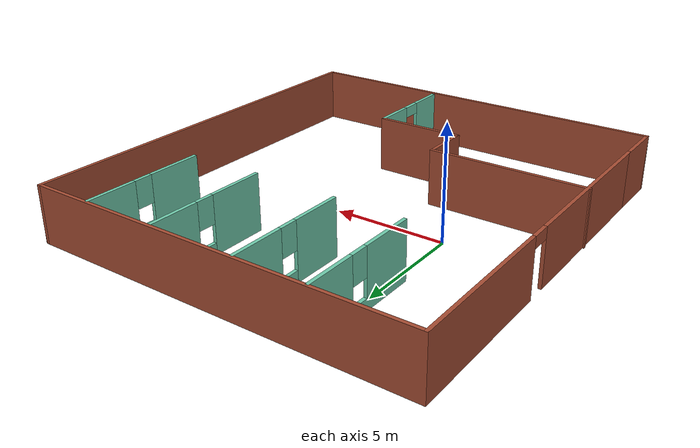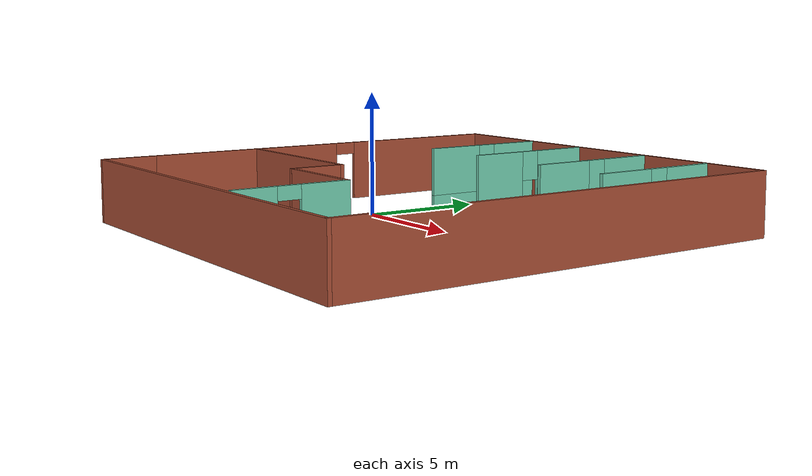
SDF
<?xml version='1.0'?>
<sdf version='1.6'>
  <model name='model'>
    <pose frame=''>3.98006 -0.405182 0 0 -0 0</pose>
    <link name='Wall_1'>
      <pose frame=''>-8.52339 1.125 0 0 -0 1.5708</pose>
      <visual name='Wall_1_Visual_0'>
        <pose frame=''>-3.9165 0 1.25 0 -0 0</pose>
        <geometry>
          <box>
            <size>8.41701 0.15 2.5</size>
          </box>
        </geometry>
        <material>
          <script>
            <uri>file://media/materials/scripts/gazebo.material</uri>
            <name>Gazebo/Bricks</name>
          </script>
          <ambient>1 1 1 1</ambient>
        </material>
      </visual>
      <collision name='Wall_1_Collision_0'>
        <geometry>
          <box>
            <size>8.41701 0.15 2.5</size>
          </box>
        </geometry>
        <pose frame=''>-3.9165 0 1.25 0 -0 0</pose>
      </collision>
      <visual name='Wall_1_Visual_1'>
        <pose frame=''>4.6585 0 1.25 0 -0 0</pose>
        <geometry>
          <box>
            <size>6.93299 0.15 2.5</size>
          </box>
        </geometry>
        <material>
          <script>
            <uri>file://media/materials/scripts/gazebo.material</uri>
            <name>Gazebo/Bricks</name>
          </script>
          <ambient>1 1 1 1</ambient>
        </material>
      </visual>
      <collision name='Wall_1_Collision_1'>
        <geometry>
          <box>
            <size>6.93299 0.15 2.5</size>
          </box>
        </geometry>
        <pose frame=''>4.6585 0 1.25 0 -0 0</pose>
      </collision>
      <visual name='Wall_1_Visual_2'>
        <pose frame=''>0.742008 0 2.25 0 -0 0</pose>
        <geometry>
          <box>
            <size>0.9 0.15 0.5</size>
          </box>
        </geometry>
        <material>
          <script>
            <uri>file://media/materials/scripts/gazebo.material</uri>
            <name>Gazebo/Bricks</name>
          </script>
          <ambient>1 1 1 1</ambient>
        </material>
      </visual>
      <collision name='Wall_1_Collision_2'>
        <geometry>
          <box>
            <size>0.9 0.15 0.5</size>
          </box>
        </geometry>
        <pose frame=''>0.742008 0 2.25 0 -0 0</pose>
      </collision>
    </link>
    <link name='Wall_16'>
      <pose frame=''>-1.20769 6.39462 0 0 -0 1.5708</pose>
      <visual name='Wall_16_Visual_0'>
        <pose frame=''>-1.59557 0 1.25 0 -0 0</pose>
        <geometry>
          <box>
            <size>2.30886 0.15 2.5</size>
          </box>
        </geometry>
        <material>
          <script>
            <uri>file://media/materials/scripts/gazebo.material</uri>
            <name>Gazebo/Grey</name>
          </script>
          <ambient>0.435294 0.796078 0.67451 1</ambient>
        </material>
      </visual>
      <collision name='Wall_16_Collision_0'>
        <geometry>
          <box>
            <size>2.30886 0.15 2.5</size>
          </box>
        </geometry>
        <pose frame=''>-1.59557 0 1.25 0 -0 0</pose>
      </collision>
      <visual name='Wall_16_Visual_1'>
        <pose frame=''>1.15443 0 0.25 0 -0 0</pose>
        <geometry>
          <box>
            <size>3.19114 0.15 0.5</size>
          </box>
        </geometry>
        <material>
          <script>
            <uri>file://media/materials/scripts/gazebo.material</uri>
            <name>Gazebo/Grey</name>
          </script>
          <ambient>0.435294 0.796078 0.67451 1</ambient>
        </material>
      </visual>
      <collision name='Wall_16_Collision_1'>
        <geometry>
          <box>
            <size>3.19114 0.15 0.5</size>
          </box>
        </geometry>
        <pose frame=''>1.15443 0 0.25 0 -0 0</pose>
      </collision>
      <visual name='Wall_16_Visual_2'>
        <pose frame=''>1.55443 0 1.5 0 -0 0</pose>
        <geometry>
          <box>
            <size>2.39114 0.15 2</size>
          </box>
        </geometry>
        <material>
          <script>
            <uri>file://media/materials/scripts/gazebo.material</uri>
            <name>Gazebo/Grey</name>
          </script>
          <ambient>0.435294 0.796078 0.67451 1</ambient>
        </material>
      </visual>
      <collision name='Wall_16_Collision_2'>
        <geometry>
          <box>
            <size>2.39114 0.15 2</size>
          </box>
        </geometry>
        <pose frame=''>1.55443 0 1.5 0 -0 0</pose>
      </collision>
      <visual name='Wall_16_Visual_3'>
        <pose frame=''>-0.04114 0 1.9 0 -0 0</pose>
        <geometry>
          <box>
            <size>0.8 0.15 1.2</size>
          </box>
        </geometry>
        <material>
          <script>
            <uri>file://media/materials/scripts/gazebo.material</uri>
            <name>Gazebo/Grey</name>
          </script>
          <ambient>0.435294 0.796078 0.67451 1</ambient>
        </material>
      </visual>
      <collision name='Wall_16_Collision_3'>
        <geometry>
          <box>
            <size>0.8 0.15 1.2</size>
          </box>
        </geometry>
        <pose frame=''>-0.04114 0 1.9 0 -0 0</pose>
      </collision>
    </link>
    <link name='Wall_19'>
      <pose frame=''>2.63286 6.35372 0 0 -0 1.5708</pose>
      <visual name='Wall_19_Visual_0'>
        <pose frame=''>-1.50436 0 1.25 0 -0 0</pose>
        <geometry>
          <box>
            <size>2.49128 0.15 2.5</size>
          </box>
        </geometry>
        <material>
          <script>
            <uri>file://media/materials/scripts/gazebo.material</uri>
            <name>Gazebo/Grey</name>
          </script>
          <ambient>0.435294 0.796078 0.67451 1</ambient>
        </material>
      </visual>
      <collision name='Wall_19_Collision_0'>
        <geometry>
          <box>
            <size>2.49128 0.15 2.5</size>
          </box>
        </geometry>
        <pose frame=''>-1.50436 0 1.25 0 -0 0</pose>
      </collision>
      <visual name='Wall_19_Visual_1'>
        <pose frame=''>1.24564 0 0.25 0 -0 0</pose>
        <geometry>
          <box>
            <size>3.00872 0.15 0.5</size>
          </box>
        </geometry>
        <material>
          <script>
            <uri>file://media/materials/scripts/gazebo.material</uri>
            <name>Gazebo/Grey</name>
          </script>
          <ambient>0.435294 0.796078 0.67451 1</ambient>
        </material>
      </visual>
      <collision name='Wall_19_Collision_1'>
        <geometry>
          <box>
            <size>3.00872 0.15 0.5</size>
          </box>
        </geometry>
        <pose frame=''>1.24564 0 0.25 0 -0 0</pose>
      </collision>
      <visual name='Wall_19_Visual_2'>
        <pose frame=''>1.64564 0 1.5 0 -0 0</pose>
        <geometry>
          <box>
            <size>2.20872 0.15 2</size>
          </box>
        </geometry>
        <material>
          <script>
            <uri>file://media/materials/scripts/gazebo.material</uri>
            <name>Gazebo/Grey</name>
          </script>
          <ambient>0.435294 0.796078 0.67451 1</ambient>
        </material>
      </visual>
      <collision name='Wall_19_Collision_2'>
        <geometry>
          <box>
            <size>2.20872 0.15 2</size>
          </box>
        </geometry>
        <pose frame=''>1.64564 0 1.5 0 -0 0</pose>
      </collision>
      <visual name='Wall_19_Visual_3'>
        <pose frame=''>0.141276 0 1.9 0 -0 0</pose>
        <geometry>
          <box>
            <size>0.8 0.15 1.2</size>
          </box>
        </geometry>
        <material>
          <script>
            <uri>file://media/materials/scripts/gazebo.material</uri>
            <name>Gazebo/Grey</name>
          </script>
          <ambient>0.435294 0.796078 0.67451 1</ambient>
        </material>
      </visual>
      <collision name='Wall_19_Collision_3'>
        <geometry>
          <box>
            <size>0.8 0.15 1.2</size>
          </box>
        </geometry>
        <pose frame=''>0.141276 0 1.9 0 -0 0</pose>
      </collision>
    </link>
    <link name='Wall_2'>
      <collision name='Wall_2_Collision'>
        <geometry>
          <box>
            <size>17.25 0.15 2.5</size>
          </box>
        </geometry>
        <pose frame=''>0 0 1.25 0 -0 0</pose>
      </collision>
      <visual name='Wall_2_Visual'>
        <pose frame=''>0 0 1.25 0 -0 0</pose>
        <geometry>
          <box>
            <size>17.25 0.15 2.5</size>
          </box>
        </geometry>
        <material>
          <script>
            <uri>file://media/materials/scripts/gazebo.material</uri>
            <name>Gazebo/Bricks</name>
          </script>
          <ambient>1 1 1 1</ambient>
        </material>
      </visual>
      <pose frame=''>0.026614 9.175 0 0 -0 0</pose>
    </link>
    <link name='Wall_21'>
      <pose frame=''>5.9336 6.40832 0 0 -0 1.5708</pose>
      <visual name='Wall_21_Visual_0'>
        <pose frame=''>-1.53166 0 1.25 0 -0 0</pose>
        <geometry>
          <box>
            <size>2.43667 0.15 2.5</size>
          </box>
        </geometry>
        <material>
          <script>
            <uri>file://media/materials/scripts/gazebo.material</uri>
            <name>Gazebo/Grey</name>
          </script>
          <ambient>0.435294 0.796078 0.67451 1</ambient>
        </material>
      </visual>
      <collision name='Wall_21_Collision_0'>
        <geometry>
          <box>
            <size>2.43667 0.15 2.5</size>
          </box>
        </geometry>
        <pose frame=''>-1.53166 0 1.25 0 -0 0</pose>
      </collision>
      <visual name='Wall_21_Visual_1'>
        <pose frame=''>1.21834 0 0.25 0 -0 0</pose>
        <geometry>
          <box>
            <size>3.06333 0.15 0.5</size>
          </box>
        </geometry>
        <material>
          <script>
            <uri>file://media/materials/scripts/gazebo.material</uri>
            <name>Gazebo/Grey</name>
          </script>
          <ambient>0.435294 0.796078 0.67451 1</ambient>
        </material>
      </visual>
      <collision name='Wall_21_Collision_1'>
        <geometry>
          <box>
            <size>3.06333 0.15 0.5</size>
          </box>
        </geometry>
        <pose frame=''>1.21834 0 0.25 0 -0 0</pose>
      </collision>
      <visual name='Wall_21_Visual_2'>
        <pose frame=''>1.61834 0 1.5 0 -0 0</pose>
        <geometry>
          <box>
            <size>2.26333 0.15 2</size>
          </box>
        </geometry>
        <material>
          <script>
            <uri>file://media/materials/scripts/gazebo.material</uri>
            <name>Gazebo/Grey</name>
          </script>
          <ambient>0.435294 0.796078 0.67451 1</ambient>
        </material>
      </visual>
      <collision name='Wall_21_Collision_2'>
        <geometry>
          <box>
            <size>2.26333 0.15 2</size>
          </box>
        </geometry>
        <pose frame=''>1.61834 0 1.5 0 -0 0</pose>
      </collision>
      <visual name='Wall_21_Visual_3'>
        <pose frame=''>0.086671 0 1.9 0 -0 0</pose>
        <geometry>
          <box>
            <size>0.8 0.15 1.2</size>
          </box>
        </geometry>
        <material>
          <script>
            <uri>file://media/materials/scripts/gazebo.material</uri>
            <name>Gazebo/Grey</name>
          </script>
          <ambient>0.435294 0.796078 0.67451 1</ambient>
        </material>
      </visual>
      <collision name='Wall_21_Collision_3'>
        <geometry>
          <box>
            <size>0.8 0.15 1.2</size>
          </box>
        </geometry>
        <pose frame=''>0.086671 0 1.9 0 -0 0</pose>
      </collision>
    </link>
    <link name='Wall_23'>
      <collision name='Wall_23_Collision'>
        <geometry>
          <box>
            <size>7 0.15 2.5</size>
          </box>
        </geometry>
        <pose frame=''>0 0 1.25 0 -0 0</pose>
      </collision>
      <visual name='Wall_23_Visual'>
        <pose frame=''>0 0 1.25 0 -0 0</pose>
        <geometry>
          <box>
            <size>7 0.15 2.5</size>
          </box>
        </geometry>
        <material>
          <script>
            <uri>file://media/materials/scripts/gazebo.material</uri>
            <name>Gazebo/Bricks</name>
          </script>
          <ambient>1 1 1 1</ambient>
        </material>
      </visual>
      <pose frame=''>-5.15161 -2.44563 0 0 -0 0</pose>
    </link>
    <link name='Wall_24'>
      <collision name='Wall_24_Collision'>
        <geometry>
          <box>
            <size>2.25 0.15 2.5</size>
          </box>
        </geometry>
        <pose frame=''>0 0 1.25 0 -0 0</pose>
      </collision>
      <visual name='Wall_24_Visual'>
        <pose frame=''>0 0 1.25 0 -0 0</pose>
        <geometry>
          <box>
            <size>2.25 0.15 2.5</size>
          </box>
        </geometry>
        <material>
          <script>
            <uri>file://media/materials/scripts/gazebo.material</uri>
            <name>Gazebo/Bricks</name>
          </script>
          <ambient>1 1 1 1</ambient>
        </material>
      </visual>
      <pose frame=''>-1.72662 -3.49564 0 0 0 -1.5708</pose>
    </link>
    <link name='Wall_25'>
      <collision name='Wall_25_Collision'>
        <geometry>
          <box>
            <size>4 0.15 2.5</size>
          </box>
        </geometry>
        <pose frame=''>0 0 1.25 0 -0 0</pose>
      </collision>
      <visual name='Wall_25_Visual'>
        <pose frame=''>0 0 1.25 0 -0 0</pose>
        <geometry>
          <box>
            <size>4 0.15 2.5</size>
          </box>
        </geometry>
        <material>
          <script>
            <uri>file://media/materials/scripts/gazebo.material</uri>
            <name>Gazebo/Bricks</name>
          </script>
          <ambient>1 1 1 1</ambient>
        </material>
      </visual>
      <pose frame=''>0.198385 -4.54563 0 0 -0 0</pose>
    </link>
    <link name='Wall_26'>
      <pose frame=''>2.12338 -6.72063 0 0 0 -1.5708</pose>
      <visual name='Wall_26_Visual_0'>
        <pose frame=''>-1.29049 0 1.25 0 -0 0</pose>
        <geometry>
          <box>
            <size>1.91901 0.15 2.5</size>
          </box>
        </geometry>
        <material>
          <script>
            <uri>file://media/materials/scripts/gazebo.material</uri>
            <name>Gazebo/Grey</name>
          </script>
          <ambient>0.435294 0.796078 0.67451 1</ambient>
        </material>
      </visual>
      <collision name='Wall_26_Collision_0'>
        <geometry>
          <box>
            <size>1.91901 0.15 2.5</size>
          </box>
        </geometry>
        <pose frame=''>-1.29049 0 1.25 0 -0 0</pose>
      </collision>
      <visual name='Wall_26_Visual_1'>
        <pose frame=''>1.40951 0 1.25 0 -0 0</pose>
        <geometry>
          <box>
            <size>1.68099 0.15 2.5</size>
          </box>
        </geometry>
        <material>
          <script>
            <uri>file://media/materials/scripts/gazebo.material</uri>
            <name>Gazebo/Grey</name>
          </script>
          <ambient>0.435294 0.796078 0.67451 1</ambient>
        </material>
      </visual>
      <collision name='Wall_26_Collision_1'>
        <geometry>
          <box>
            <size>1.68099 0.15 2.5</size>
          </box>
        </geometry>
        <pose frame=''>1.40951 0 1.25 0 -0 0</pose>
      </collision>
      <visual name='Wall_26_Visual_2'>
        <pose frame=''>0.119013 0 2.25 0 -0 0</pose>
        <geometry>
          <box>
            <size>0.9 0.15 0.5</size>
          </box>
        </geometry>
        <material>
          <script>
            <uri>file://media/materials/scripts/gazebo.material</uri>
            <name>Gazebo/Grey</name>
          </script>
          <ambient>0.435294 0.796078 0.67451 1</ambient>
        </material>
      </visual>
      <collision name='Wall_26_Collision_2'>
        <geometry>
          <box>
            <size>0.9 0.15 0.5</size>
          </box>
        </geometry>
        <pose frame=''>0.119013 0 2.25 0 -0 0</pose>
      </collision>
    </link>
    <link name='Wall_3'>
      <collision name='Wall_3_Collision'>
        <geometry>
          <box>
            <size>18.5 0.15 2.5</size>
          </box>
        </geometry>
        <pose frame=''>0 0 1.25 0 -0 0</pose>
      </collision>
      <visual name='Wall_3_Visual'>
        <pose frame=''>0 0 1.25 0 -0 0</pose>
        <geometry>
          <box>
            <size>18.5 0.15 2.5</size>
          </box>
        </geometry>
        <material>
          <script>
            <uri>file://media/materials/scripts/gazebo.material</uri>
            <name>Gazebo/Bricks</name>
          </script>
          <ambient>1 1 1 1</ambient>
        </material>
      </visual>
      <pose frame=''>8.57661 0 0 0 0 -1.5708</pose>
    </link>
    <link name='Wall_4'>
      <collision name='Wall_4_Collision'>
        <geometry>
          <box>
            <size>17.25 0.15 2.5</size>
          </box>
        </geometry>
        <pose frame=''>0 0 1.25 0 -0 0</pose>
      </collision>
      <visual name='Wall_4_Visual'>
        <pose frame=''>0 0 1.25 0 -0 0</pose>
        <geometry>
          <box>
            <size>17.25 0.15 2.5</size>
          </box>
        </geometry>
        <material>
          <script>
            <uri>file://media/materials/scripts/gazebo.material</uri>
            <name>Gazebo/Bricks</name>
          </script>
          <ambient>1 1 1 1</ambient>
        </material>
      </visual>
      <pose frame=''>0.026614 -9.175 0 0 -0 3.14159</pose>
    </link>
    <link name='Wall_5'>
      <collision name='Wall_5_Collision'>
        <geometry>
          <box>
            <size>2.5 0.15 2.5</size>
          </box>
        </geometry>
        <pose frame=''>0 0 1.25 0 -0 0</pose>
      </collision>
      <visual name='Wall_5_Visual'>
        <pose frame=''>0 0 1.25 0 -0 0</pose>
        <geometry>
          <box>
            <size>2.5 0.15 2.5</size>
          </box>
        </geometry>
        <material>
          <script>
            <uri>file://media/materials/scripts/gazebo.material</uri>
            <name>Gazebo/Bricks</name>
          </script>
          <ambient>1 1 1 1</ambient>
        </material>
      </visual>
      <pose frame=''>-8.52339 -8 0 0 -0 1.5708</pose>
    </link>
    <link name='Wall_7'>
      <pose frame=''>-4.29529 6.41213 0 0 0 -1.5708</pose>
      <visual name='Wall_7_Visual_0'>
        <pose frame=''>-1.61643 0 1.25 0 -0 0</pose>
        <geometry>
          <box>
            <size>2.26714 0.15 2.5</size>
          </box>
        </geometry>
        <material>
          <script>
            <uri>file://media/materials/scripts/gazebo.material</uri>
            <name>Gazebo/Grey</name>
          </script>
          <ambient>0.435294 0.796078 0.67451 1</ambient>
        </material>
      </visual>
      <collision name='Wall_7_Collision_0'>
        <geometry>
          <box>
            <size>2.26714 0.15 2.5</size>
          </box>
        </geometry>
        <pose frame=''>-1.61643 0 1.25 0 -0 0</pose>
      </collision>
      <visual name='Wall_7_Visual_1'>
        <pose frame=''>1.13357 0 0.25 0 -0 0</pose>
        <geometry>
          <box>
            <size>3.23286 0.15 0.5</size>
          </box>
        </geometry>
        <material>
          <script>
            <uri>file://media/materials/scripts/gazebo.material</uri>
            <name>Gazebo/Grey</name>
          </script>
          <ambient>0.435294 0.796078 0.67451 1</ambient>
        </material>
      </visual>
      <collision name='Wall_7_Collision_1'>
        <geometry>
          <box>
            <size>3.23286 0.15 0.5</size>
          </box>
        </geometry>
        <pose frame=''>1.13357 0 0.25 0 -0 0</pose>
      </collision>
      <visual name='Wall_7_Visual_2'>
        <pose frame=''>1.53357 0 1.5 0 -0 0</pose>
        <geometry>
          <box>
            <size>2.43286 0.15 2</size>
          </box>
        </geometry>
        <material>
          <script>
            <uri>file://media/materials/scripts/gazebo.material</uri>
            <name>Gazebo/Grey</name>
          </script>
          <ambient>0.435294 0.796078 0.67451 1</ambient>
        </material>
      </visual>
      <collision name='Wall_7_Collision_2'>
        <geometry>
          <box>
            <size>2.43286 0.15 2</size>
          </box>
        </geometry>
        <pose frame=''>1.53357 0 1.5 0 -0 0</pose>
      </collision>
      <visual name='Wall_7_Visual_3'>
        <pose frame=''>-0.082863 0 1.9 0 -0 0</pose>
        <geometry>
          <box>
            <size>0.8 0.15 1.2</size>
          </box>
        </geometry>
        <material>
          <script>
            <uri>file://media/materials/scripts/gazebo.material</uri>
            <name>Gazebo/Grey</name>
          </script>
          <ambient>0.435294 0.796078 0.67451 1</ambient>
        </material>
      </visual>
      <collision name='Wall_7_Collision_3'>
        <geometry>
          <box>
            <size>0.8 0.15 1.2</size>
          </box>
        </geometry>
        <pose frame=''>-0.082863 0 1.9 0 -0 0</pose>
      </collision>
    </link>
    <static>1</static>
  </model>
</sdf>
